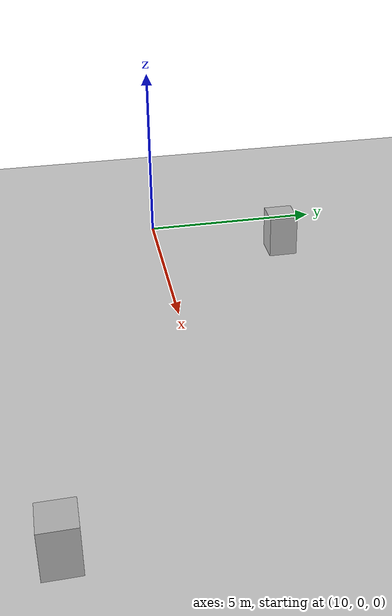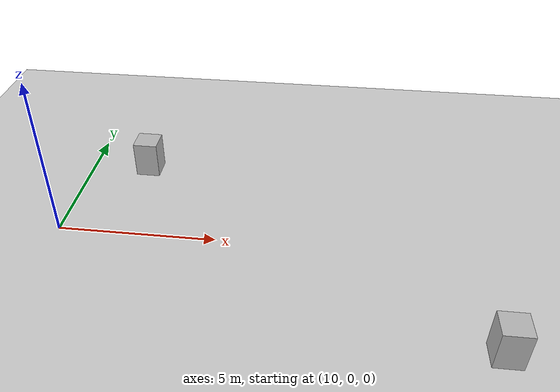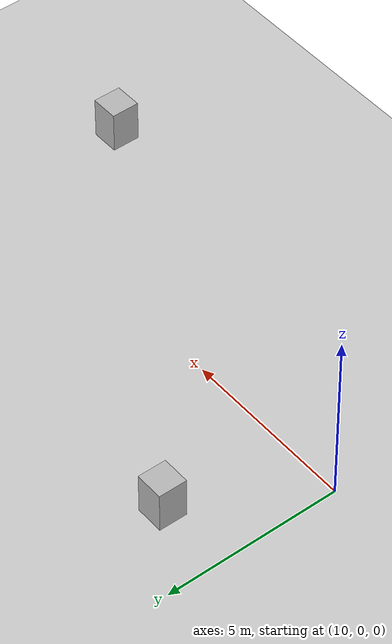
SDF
<?xml version="1.0"?>
<sdf version="1.6">
  <world name="v2-04g-p2-q1-qual-ackermann-circle-v130-s5336">
    <gravity>0 0 -9.81</gravity>
    <physics name="v2_deterministic" type="ode">
      <max_step_size>0.002</max_step_size>
      <real_time_update_rate>500</real_time_update_rate>
    </physics>
    <include>
      <uri>model://sun</uri>
    </include>
    <include>
      <uri>model://ground_plane</uri>
    </include>
    <model name="cruise-left">
      <static>true</static>
      <pose>12.026144597 3.559078718 0.600000000 0 0 -0.004442126</pose>
      <link name="link">
        <collision name="collision">
          <geometry>
            <box>
              <size>0.800000 0.800000 1.200000</size>
            </box>
          </geometry>
        </collision>
        <visual name="visual">
          <geometry>
            <box>
              <size>0.800000 0.800000 1.200000</size>
            </box>
          </geometry>
        </visual>
      </link>
    </model>
    <model name="cruise-right">
      <static>true</static>
      <pose>23.044723958 -3.534606414 0.600000000 0 0 0.005529565</pose>
      <link name="link">
        <collision name="collision">
          <geometry>
            <box>
              <size>0.800000 0.800000 1.200000</size>
            </box>
          </geometry>
        </collision>
        <visual name="visual">
          <geometry>
            <box>
              <size>0.800000 0.800000 1.200000</size>
            </box>
          </geometry>
        </visual>
      </link>
    </model>
  </world>
</sdf>
